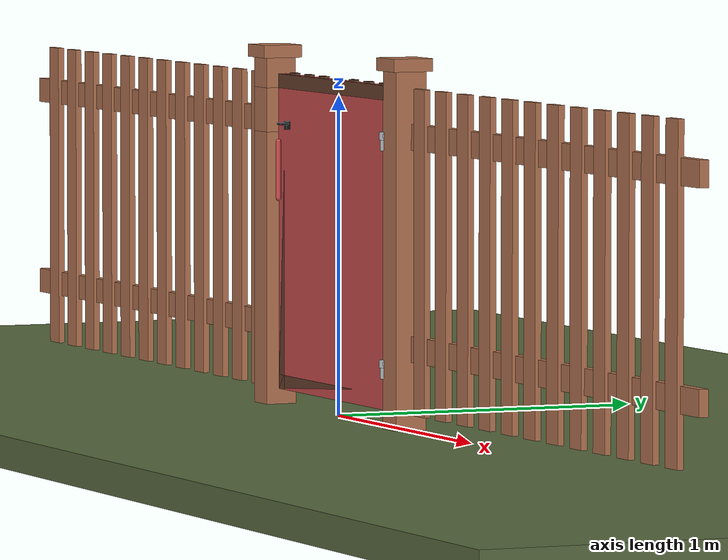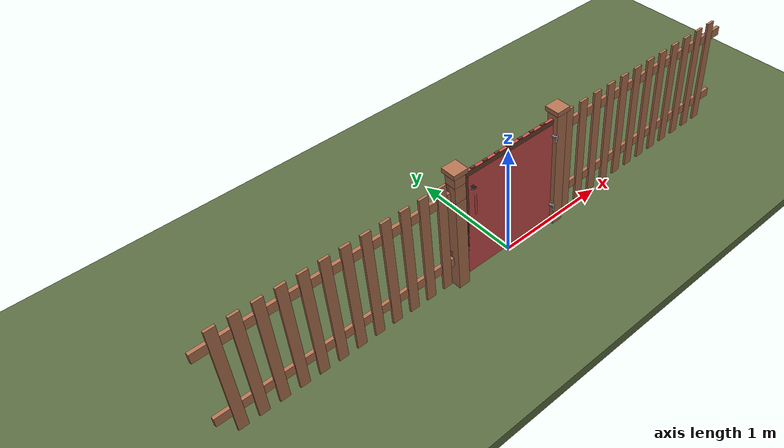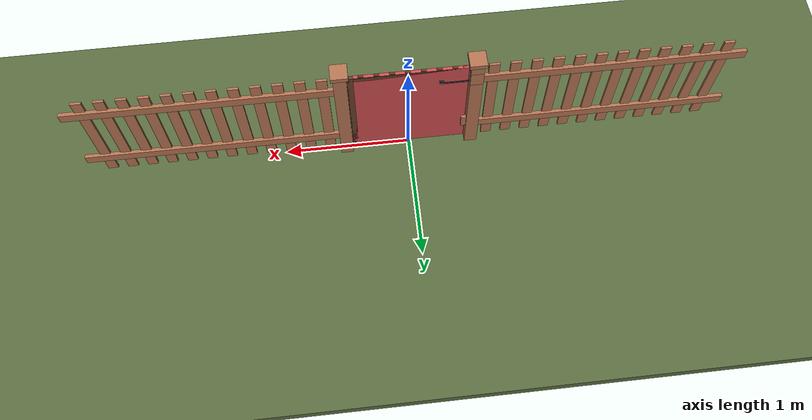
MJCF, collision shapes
<?xml version="1.0" ?>
<mujoco model="db0192_gate_swing_full">
  <compiler angle="radian" meshdir="../../hardware" texturedir="../../textures" autolimits="true" inertiafromgeom="false"/>
  <option timestep="0.002" integrator="implicitfast" cone="elliptic" impratio="10" noslip_iterations="3">
    <flag multiccd="enable"/>
  </option>
  <size memory="16M"/>
  <default>
    <geom condim="4" solref="0.005 1" solimp="0.95 0.99 0.001"/>
    <joint solreflimit="0.005 1" solimplimit="0.95 0.99 0.001"/>
    <tendon solreflimit="0.005 1"/>
    <equality solref="0.002 1"/>
  </default>
  <visual>
    <headlight ambient="0.4 0.4 0.4" diffuse="0.7 0.7 0.7" specular="0.2 0.2 0.2"/>
    <quality shadowsize="4096"/>
    <map znear="0.01" zfar="60"/>
  </visual>
  <asset>
    <mesh name="strap_hinge_f1a982ddce" file="strap_hinge_f1a982ddce.obj"/>
    <mesh name="thumb_latch_0073ea78ed" file="thumb_latch_0073ea78ed.obj"/>
    <material name="mat_floor" rgba="0.35 0.42 0.25 1" specular="0.2" shininess="0.15" reflectance="0"/>
    <material name="mat_wall" rgba="0.78 0.76 0.7 1" specular="0.2" shininess="0.1" reflectance="0"/>
    <material name="mat_leaf" rgba="0.398 0.243 0.164 1" specular="0.2" shininess="0.4" reflectance="0"/>
    <material name="mat_hinge" rgba="0.65 0.66 0.68 1" specular="0.74" shininess="0.5" reflectance="0.36"/>
    <material name="mat_op_wrought_iron" rgba="0.08 0.08 0.09 1" specular="0.56" shininess="0.25" reflectance="0.24"/>
    <material name="mat_frame" rgba="0.7 0.45 0.32 1" specular="0.2" shininess="0.4" reflectance="0"/>
    <material name="mat_fence" rgba="0.7 0.45 0.32 1" specular="0.2" shininess="0.4" reflectance="0"/>
    <texture name="skybox" type="skybox" builtin="gradient" rgb1="0.6 0.7 0.85" rgb2="0.9 0.92 0.95" width="256" height="256"/>
  </asset>
  <worldbody>
    <light name="sun" pos="1.5 -2.5 4" dir="-0.3 0.5 -0.8" directional="true" diffuse="0.8 0.8 0.8" specular="0.3 0.3 0.3" castshadow="true"/>
    <light name="fill" pos="-1.5 2.5 3" dir="0.3 -0.5 -0.7" directional="true" diffuse="0.35 0.35 0.4" castshadow="false"/>
    <camera name="robot_view" pos="0 -1.875 1.035" xyaxes="1 0 0 0 0.26963 0.962964" fovy="52"/>
    <camera name="far_view" pos="0 1.875 1.035" xyaxes="-1 0 0 0 -0.26963 0.962964" fovy="52"/>
    <camera name="iso" pos="-1.425 -1.575 1.335" xyaxes="0.741536 -0.670913 0 0.242917 0.268487 0.932151" fovy="46"/>
    <camera name="detail_handle" pos="-0.187 -0.8475 1.03" xyaxes="0.97561 0.219512 0 -0.070934 0.315262 0.94635" fovy="38"/>
    <geom name="floor" type="box" size="6 6 0.05" pos="0 0 -0.05" material="mat_floor" group="0" contype="1" conaffinity="1" friction="0.8 0.005 0.0001" density="2400"/>
    <geom name="hinge_pintle_0" type="cylinder" size="0.008 0.02" pos="0.453 -0.05 0.174" material="mat_hinge" group="1" contype="0" conaffinity="0" density="7850"/>
    <geom name="hinge_pintle_1" type="cylinder" size="0.008 0.02" pos="0.453 -0.05 0.874" material="mat_hinge" group="1" contype="0" conaffinity="0" density="7850"/>
    <geom name="leaf_latch_bar_keeper_b" type="box" size="0.015 0.0025 0.0005" pos="-0.4555 0.0245 0.8625" quat="0.5 0.5 0.5 0.5" material="mat_op_wrought_iron" group="1" contype="0" conaffinity="0" density="7800"/>
    <geom name="leaf_latch_bar_keeper_l" type="box" size="0.0025 0.07 0.0005" pos="-0.4555 0.012 0.935" quat="0.5 0.5 0.5 0.5" material="mat_op_wrought_iron" group="1" contype="0" conaffinity="0" density="7800"/>
    <geom name="leaf_latch_bar_keeper_t" type="box" size="0.015 0.0025 0.0005" pos="-0.4555 0.0245 1.0075" quat="0.5 0.5 0.5 0.5" material="mat_op_wrought_iron" group="1" contype="0" conaffinity="0" density="7800"/>
    <geom name="leaf_latch_bar_keeper_r" type="box" size="0.0025 0.07 0.0005" pos="-0.4555 0.037 0.935" quat="0.5 0.5 0.5 0.5" material="mat_op_wrought_iron" group="1" contype="0" conaffinity="0" density="7800"/>
    <geom name="post_hinge" type="box" size="0.05 0.05 0.55" pos="0.506 0 0.55" material="mat_frame" group="0" contype="1" conaffinity="1" friction="0.6 0.005 0.0001" density="350"/>
    <geom name="post_hinge_cap" type="box" size="0.065 0.065 0.02" pos="0.506 0 1.12" material="mat_frame" group="1" contype="0" conaffinity="0" density="350"/>
    <geom name="post_935_wall_n" type="box" size="0.05 0.00775 0.07" pos="-0.506 0.04225 0.935" material="mat_frame" group="0" contype="1" conaffinity="1" friction="0.6 0.005 0.0001" density="350"/>
    <geom name="post_935_wall_p" type="box" size="0.05 0.03225 0.07" pos="-0.506 -0.01775 0.935" material="mat_frame" group="0" contype="1" conaffinity="1" friction="0.6 0.005 0.0001" density="350"/>
    <geom name="post_935_back" type="box" size="0.04 0.01 0.07" pos="-0.516 0.0245 0.935" material="mat_frame" group="0" contype="1" conaffinity="1" friction="0.6 0.005 0.0001" density="350"/>
    <geom name="post_latch_0" type="box" size="0.05 0.05 0.4325" pos="-0.506 0 0.4325" material="mat_frame" group="0" contype="1" conaffinity="1" friction="0.6 0.005 0.0001" density="350"/>
    <geom name="post_latch_1" type="box" size="0.05 0.05 0.0475" pos="-0.506 0 1.0525" material="mat_frame" group="0" contype="1" conaffinity="1" friction="0.6 0.005 0.0001" density="350"/>
    <geom name="post_latch_cap" type="box" size="0.065 0.065 0.02" pos="-0.506 0 1.12" material="mat_frame" group="1" contype="0" conaffinity="0" density="350"/>
    <geom name="gate_stop" type="box" size="0.02 0.012 0.06" pos="-0.436 0.0245 0.3" material="mat_frame" group="0" contype="1" conaffinity="1" friction="0.6 0.005 0.0001" density="350"/>
    <geom name="fence_picket_l_0" type="box" size="0.04 0.01 0.5" pos="-0.636 0 0.55" material="mat_fence" group="0" contype="1" conaffinity="1" friction="0.6 0.005 0.0001" density="400"/>
    <geom name="fence_picket_l_1" type="box" size="0.04 0.01 0.5" pos="-0.796 0 0.55" material="mat_fence" group="0" contype="1" conaffinity="1" friction="0.6 0.005 0.0001" density="400"/>
    <geom name="fence_picket_l_2" type="box" size="0.04 0.01 0.5" pos="-0.956 0 0.55" material="mat_fence" group="0" contype="1" conaffinity="1" friction="0.6 0.005 0.0001" density="400"/>
    <geom name="fence_picket_l_3" type="box" size="0.04 0.01 0.5" pos="-1.116 0 0.55" material="mat_fence" group="0" contype="1" conaffinity="1" friction="0.6 0.005 0.0001" density="400"/>
    <geom name="fence_picket_l_4" type="box" size="0.04 0.01 0.5" pos="-1.276 0 0.55" material="mat_fence" group="0" contype="1" conaffinity="1" friction="0.6 0.005 0.0001" density="400"/>
    <geom name="fence_picket_l_5" type="box" size="0.04 0.01 0.5" pos="-1.436 0 0.55" material="mat_fence" group="0" contype="1" conaffinity="1" friction="0.6 0.005 0.0001" density="400"/>
    <geom name="fence_picket_l_6" type="box" size="0.04 0.01 0.5" pos="-1.596 0 0.55" material="mat_fence" group="0" contype="1" conaffinity="1" friction="0.6 0.005 0.0001" density="400"/>
    <geom name="fence_picket_l_7" type="box" size="0.04 0.01 0.5" pos="-1.756 0 0.55" material="mat_fence" group="0" contype="1" conaffinity="1" friction="0.6 0.005 0.0001" density="400"/>
    <geom name="fence_picket_l_8" type="box" size="0.04 0.01 0.5" pos="-1.916 0 0.55" material="mat_fence" group="0" contype="1" conaffinity="1" friction="0.6 0.005 0.0001" density="400"/>
    <geom name="fence_picket_l_9" type="box" size="0.04 0.01 0.5" pos="-2.076 0 0.55" material="mat_fence" group="0" contype="1" conaffinity="1" friction="0.6 0.005 0.0001" density="400"/>
    <geom name="fence_picket_l_10" type="box" size="0.04 0.01 0.5" pos="-2.236 0 0.55" material="mat_fence" group="0" contype="1" conaffinity="1" friction="0.6 0.005 0.0001" density="400"/>
    <geom name="fence_picket_l_11" type="box" size="0.04 0.01 0.5" pos="-2.396 0 0.55" material="mat_fence" group="0" contype="1" conaffinity="1" friction="0.6 0.005 0.0001" density="400"/>
    <geom name="fence_rail_l" type="box" size="1 0.015 0.04" pos="-1.556 0.015 0.9" material="mat_fence" group="0" contype="1" conaffinity="1" friction="0.6 0.005 0.0001" density="400"/>
    <geom name="fence_rail_b_l" type="box" size="1 0.015 0.04" pos="-1.556 0.015 0.25" material="mat_fence" group="0" contype="1" conaffinity="1" friction="0.6 0.005 0.0001" density="400"/>
    <geom name="fence_picket_r_0" type="box" size="0.04 0.01 0.5" pos="0.636 0 0.55" material="mat_fence" group="0" contype="1" conaffinity="1" friction="0.6 0.005 0.0001" density="400"/>
    <geom name="fence_picket_r_1" type="box" size="0.04 0.01 0.5" pos="0.796 0 0.55" material="mat_fence" group="0" contype="1" conaffinity="1" friction="0.6 0.005 0.0001" density="400"/>
    <geom name="fence_picket_r_2" type="box" size="0.04 0.01 0.5" pos="0.956 0 0.55" material="mat_fence" group="0" contype="1" conaffinity="1" friction="0.6 0.005 0.0001" density="400"/>
    <geom name="fence_picket_r_3" type="box" size="0.04 0.01 0.5" pos="1.116 0 0.55" material="mat_fence" group="0" contype="1" conaffinity="1" friction="0.6 0.005 0.0001" density="400"/>
    <geom name="fence_picket_r_4" type="box" size="0.04 0.01 0.5" pos="1.276 0 0.55" material="mat_fence" group="0" contype="1" conaffinity="1" friction="0.6 0.005 0.0001" density="400"/>
    <geom name="fence_picket_r_5" type="box" size="0.04 0.01 0.5" pos="1.436 0 0.55" material="mat_fence" group="0" contype="1" conaffinity="1" friction="0.6 0.005 0.0001" density="400"/>
    <geom name="fence_picket_r_6" type="box" size="0.04 0.01 0.5" pos="1.596 0 0.55" material="mat_fence" group="0" contype="1" conaffinity="1" friction="0.6 0.005 0.0001" density="400"/>
    <geom name="fence_picket_r_7" type="box" size="0.04 0.01 0.5" pos="1.756 0 0.55" material="mat_fence" group="0" contype="1" conaffinity="1" friction="0.6 0.005 0.0001" density="400"/>
    <geom name="fence_picket_r_8" type="box" size="0.04 0.01 0.5" pos="1.916 0 0.55" material="mat_fence" group="0" contype="1" conaffinity="1" friction="0.6 0.005 0.0001" density="400"/>
    <geom name="fence_picket_r_9" type="box" size="0.04 0.01 0.5" pos="2.076 0 0.55" material="mat_fence" group="0" contype="1" conaffinity="1" friction="0.6 0.005 0.0001" density="400"/>
    <geom name="fence_picket_r_10" type="box" size="0.04 0.01 0.5" pos="2.236 0 0.55" material="mat_fence" group="0" contype="1" conaffinity="1" friction="0.6 0.005 0.0001" density="400"/>
    <geom name="fence_picket_r_11" type="box" size="0.04 0.01 0.5" pos="2.396 0 0.55" material="mat_fence" group="0" contype="1" conaffinity="1" friction="0.6 0.005 0.0001" density="400"/>
    <geom name="fence_rail_r" type="box" size="1 0.015 0.04" pos="1.556 0.015 0.9" material="mat_fence" group="0" contype="1" conaffinity="1" friction="0.6 0.005 0.0001" density="400"/>
    <geom name="fence_rail_b_r" type="box" size="1 0.015 0.04" pos="1.556 0.015 0.25" material="mat_fence" group="0" contype="1" conaffinity="1" friction="0.6 0.005 0.0001" density="400"/>
    <geom name="gate_stop_strap_0" type="box" size="0.0505 0.0096 0.048" pos="-0.506 0.0245 0.3" material="mat_frame" group="1" contype="0" conaffinity="0" density="7850"/>
    <site name="approach_point" pos="0 -1.5 0" quat="1 0 0 0" size="0.05" rgba="0.2 0.9 0.2 0.5" group="4"/>
    <site name="goal_point" pos="0 1.5 0" quat="1 0 0 0" size="0.05" rgba="0.2 0.9 0.2 0.5" group="4"/>
    <site name="door_plane_center" pos="0 0 0.51" quat="1 0 0 0" size="0.02" rgba="0.2 0.9 0.2 0.5" group="4"/>
    <body name="leaf" pos="0.456 0 0">
      <inertial pos="-0.425698 -0.005729 0.566857" mass="8.855048" quat="0.625559 0.62923 0.326076 -0.326221" diaginertia="0.687451155 0.810007338 1.493999959"/>
      <joint name="leaf_hinge" type="hinge" axis="0 0 1" pos="-0.003 -0.05 0" limited="true" range="0 1.745329" damping="0.168492" frictionloss="4.208959" armature="0.02"/>
      <geom name="leaf_slab_col" type="box" size="0.45 0.0125 0.5" pos="-0.453 0 0.55" material="mat_leaf" group="3" contype="1" conaffinity="1" rgba="0.8 0.3 0.3 0.25" friction="0.35 0.005 0.0001" density="1"/>
      <geom name="leaf_rail_b" type="box" size="0.45 0.0125 0.0225" pos="-0.453 0 0.0725" material="mat_leaf" group="1" contype="0" conaffinity="0" density="1"/>
      <geom name="leaf_rail_t" type="box" size="0.45 0.0125 0.0225" pos="-0.453 0 1.0275" material="mat_leaf" group="1" contype="0" conaffinity="0" density="1"/>
      <geom name="leaf_stile_h" type="box" size="0.0225 0.0125 0.5" pos="-0.0255 0 0.55" material="mat_leaf" group="1" contype="0" conaffinity="0" density="1"/>
      <geom name="leaf_stile_l" type="box" size="0.0225 0.0125 0.5" pos="-0.8805 0 0.55" material="mat_leaf" group="1" contype="0" conaffinity="0" density="1"/>
      <geom name="leaf_picket_0" type="box" size="0.02 0.00875 0.4865" pos="-0.105857 0 0.57" material="mat_leaf" group="1" contype="0" conaffinity="0" density="1"/>
      <geom name="leaf_picket_1" type="box" size="0.02 0.00875 0.4865" pos="-0.221571 0 0.57" material="mat_leaf" group="1" contype="0" conaffinity="0" density="1"/>
      <geom name="leaf_picket_2" type="box" size="0.02 0.00875 0.4865" pos="-0.337286 0 0.57" material="mat_leaf" group="1" contype="0" conaffinity="0" density="1"/>
      <geom name="leaf_picket_3" type="box" size="0.02 0.00875 0.4865" pos="-0.453 0 0.57" material="mat_leaf" group="1" contype="0" conaffinity="0" density="1"/>
      <geom name="leaf_picket_4" type="box" size="0.02 0.00875 0.4865" pos="-0.568714 0 0.57" material="mat_leaf" group="1" contype="0" conaffinity="0" density="1"/>
      <geom name="leaf_picket_5" type="box" size="0.02 0.00875 0.4865" pos="-0.684429 0 0.57" material="mat_leaf" group="1" contype="0" conaffinity="0" density="1"/>
      <geom name="leaf_picket_6" type="box" size="0.02 0.00875 0.4865" pos="-0.800143 0 0.57" material="mat_leaf" group="1" contype="0" conaffinity="0" density="1"/>
      <geom name="hinge_strap_0" type="mesh" mesh="strap_hinge_f1a982ddce" pos="-0.003 -0.0155 0.2" quat="0 0 0 1" material="mat_hinge" group="1" contype="0" conaffinity="0" density="7850"/>
      <geom name="hinge_strap_eye_0" type="cylinder" size="0.011 0.012" pos="-0.003 -0.05 0.2" material="mat_hinge" group="1" contype="0" conaffinity="0" density="7850"/>
      <geom name="hinge_strap_neck_0" type="box" size="0.012 0.02125 0.006" pos="-0.003 -0.03275 0.2" material="mat_hinge" group="1" contype="0" conaffinity="0" density="7850"/>
      <geom name="hinge_strap_1" type="mesh" mesh="strap_hinge_f1a982ddce" pos="-0.003 -0.0155 0.9" quat="0 0 0 1" material="mat_hinge" group="1" contype="0" conaffinity="0" density="7850"/>
      <geom name="hinge_strap_eye_1" type="cylinder" size="0.011 0.012" pos="-0.003 -0.05 0.9" material="mat_hinge" group="1" contype="0" conaffinity="0" density="7850"/>
      <geom name="hinge_strap_neck_1" type="box" size="0.012 0.02125 0.006" pos="-0.003 -0.03275 0.9" material="mat_hinge" group="1" contype="0" conaffinity="0" density="7850"/>
      <geom name="leaf_suffolk_grip" type="mesh" mesh="thumb_latch_0073ea78ed" pos="-0.823 -0.0125 0.75" quat="0 0 -0.707107 0.707107" material="mat_op_wrought_iron" group="1" contype="0" conaffinity="0" density="7000"/>
      <geom name="leaf_suffolk_grip_col" type="capsule" size="0.008 0.09" pos="-0.823 -0.0475 0.75" material="mat_op_wrought_iron" group="3" contype="1" conaffinity="1" rgba="0.8 0.3 0.3 0.25" friction="0.7 0.01 0.0001" density="7000"/>
      <geom name="leaf_latch_bar_pivot" type="box" size="0.018 0.002 0.018" pos="-0.703 0.0145 0.89" material="mat_op_wrought_iron" group="1" contype="0" conaffinity="0" density="7000"/>
      <geom name="leaf_latch_bar_pin" type="cylinder" size="0.005 0.01" pos="-0.703 0.0225 0.89" quat="0.707107 -0.707107 0 0" material="mat_op_wrought_iron" group="1" contype="0" conaffinity="0" density="7000"/>
      <site name="leaf_grip_n" pos="-0.823 -0.0475 0.75" quat="1 0 0 0" size="0.012" rgba="0.2 0.9 0.2 0.5" group="4"/>
      <site name="leaf_edge_mid" pos="-0.903 0 0.5" quat="1 0 0 0" size="0.02" rgba="0.2 0.9 0.2 0.5" group="4"/>
      <body name="leaf_thumb" pos="-0.823 -0.0125 0.895">
        <inertial pos="0 -0.005933 -0.005008" mass="0.119952" quat="0.694063 -0.13519 -0.13519 -0.694063" diaginertia="0.000010452 0.000028338 0.000030045"/>
        <joint name="leaf_thumb_hinge" type="hinge" axis="1 0 0" limited="true" range="0 0.3" damping="0.155195" frictionloss="0.032" stiffness="0.6" springref="-0.5" armature="0.01"/>
        <geom name="leaf_thumb_geom" type="box" size="0.015 0.014 0.003" pos="0 -0.02 0" material="mat_op_wrought_iron" group="0" contype="1" conaffinity="1" friction="0.6 0.005 0.0001" density="7000"/>
        <geom name="leaf_thumb_boss" type="box" size="0.012 0.008 0.013" pos="0 -0.004 -0.005" material="mat_op_wrought_iron" group="1" contype="0" conaffinity="0" density="7000"/>
        <geom name="leaf_thumb_lifter" type="box" size="0.004 0.0165 0.004" pos="0 0.0185 -0.017" material="mat_op_wrought_iron" group="1" contype="0" conaffinity="0" density="7000"/>
        <site name="leaf_thumb_push" pos="0 -0.024 0.005" quat="1 0 0 0" size="0.01" rgba="0.2 0.9 0.2 0.5" group="4"/>
      </body>
      <body name="leaf_latch_bar" pos="-0.703 0.0245 0.89">
        <inertial pos="-0.106 0 0" mass="0.25" quat="0 0 -0.707107 0.707107" diaginertia="0.000004465 0.000904065 0.000904065"/>
        <joint name="leaf_latch_bar_hinge" type="hinge" axis="0 1 0" limited="true" range="0 0.6" damping="0.01" frictionloss="0.01" armature="0.005"/>
        <geom name="leaf_latch_bar_geom" type="capsule" size="0.006 0.1" pos="-0.106 0 0" quat="0.707107 0 -0.707107 0" material="mat_op_wrought_iron" group="0" contype="1" conaffinity="1" friction="0.6 0.005 0.0001" density="7850"/>
      </body>
    </body>
  </worldbody>
  <equality>
    <joint name="leaf_thumb_couple" joint1="leaf_latch_bar_hinge" joint2="leaf_thumb_hinge" polycoef="0 2 0 0 0" active="true"/>
  </equality>
  <sensor>
    <jointpos name="leaf_hinge_pos" joint="leaf_hinge"/>
    <jointvel name="leaf_hinge_vel" joint="leaf_hinge"/>
    <jointpos name="leaf_thumb_hinge_pos" joint="leaf_thumb_hinge"/>
    <jointvel name="leaf_thumb_hinge_vel" joint="leaf_thumb_hinge"/>
    <jointpos name="leaf_latch_bar_hinge_pos" joint="leaf_latch_bar_hinge"/>
    <jointvel name="leaf_latch_bar_hinge_vel" joint="leaf_latch_bar_hinge"/>
  </sensor>
</mujoco>
